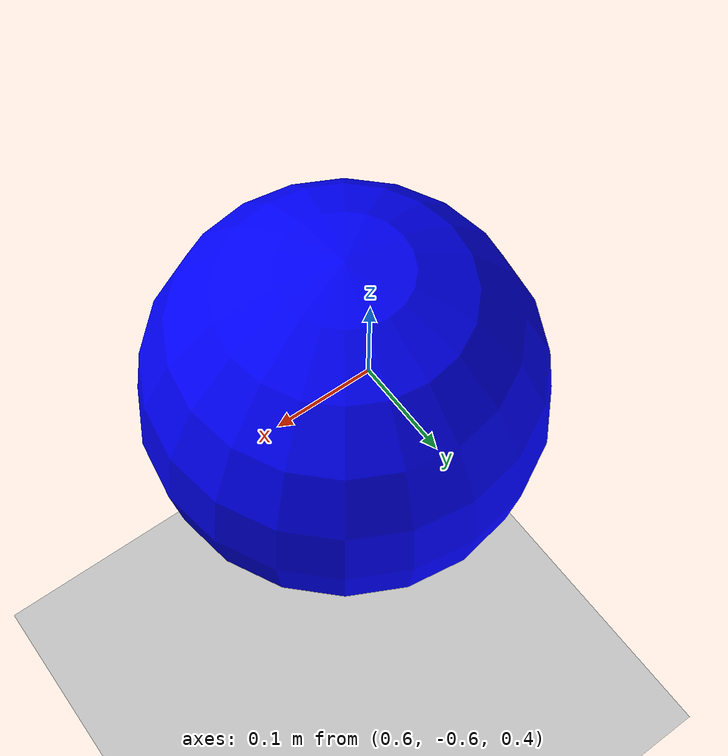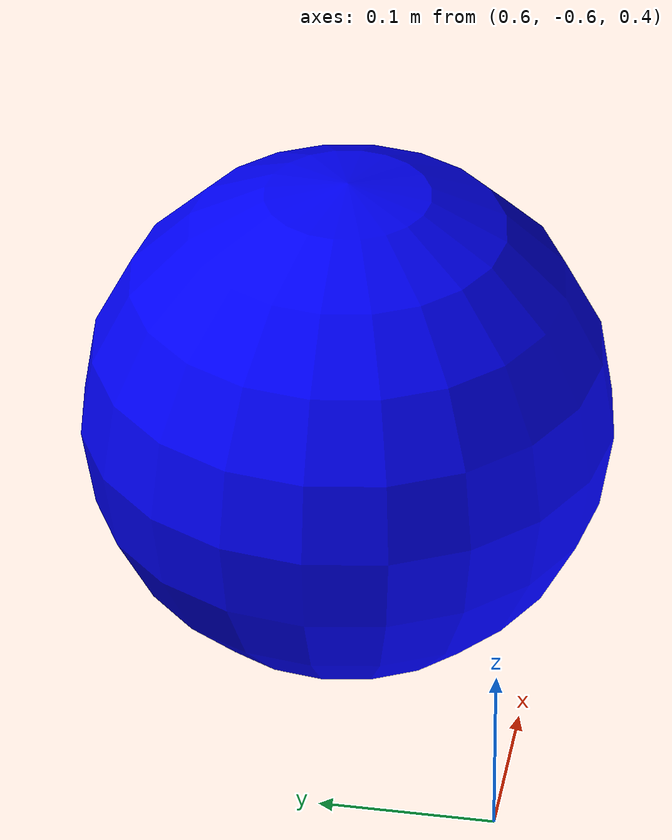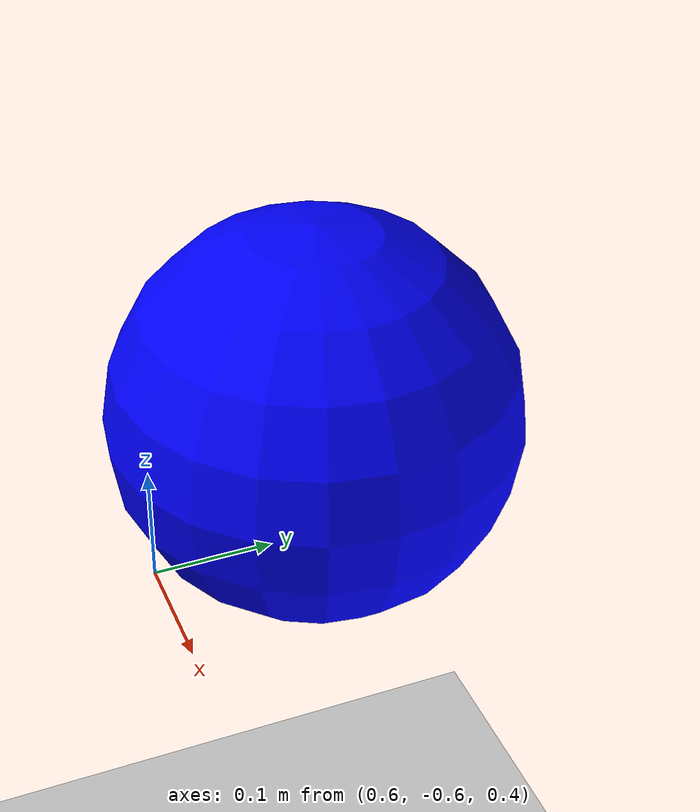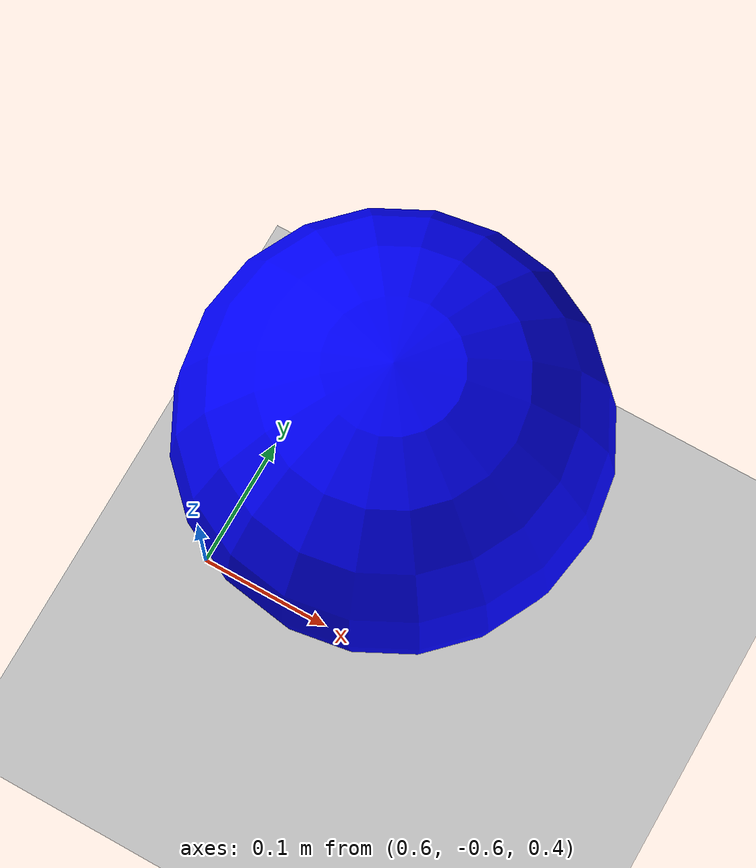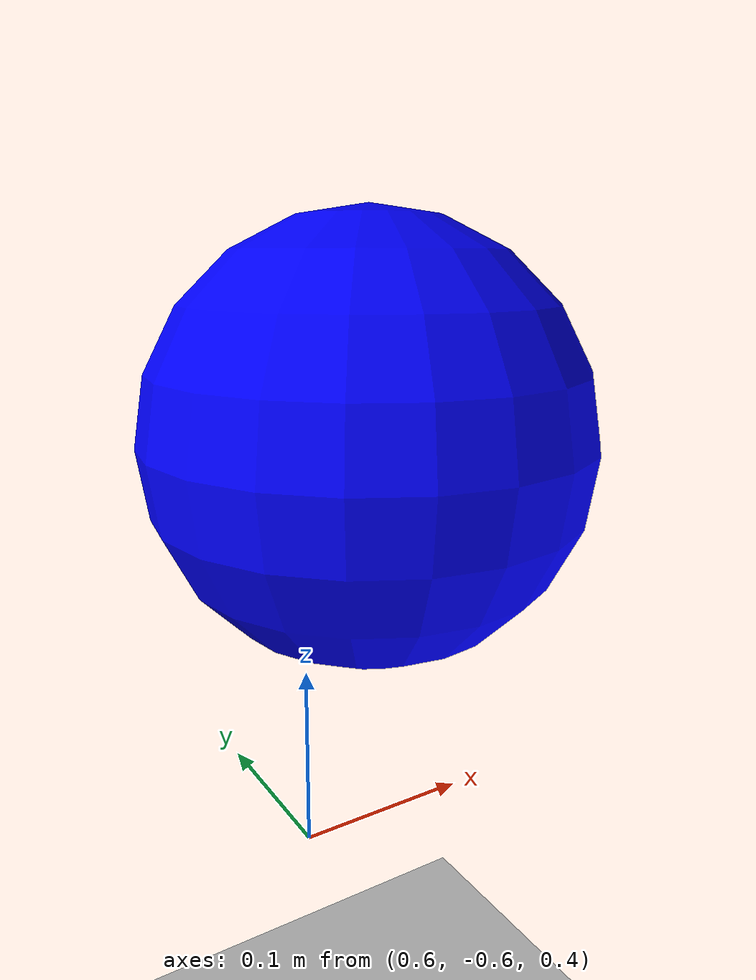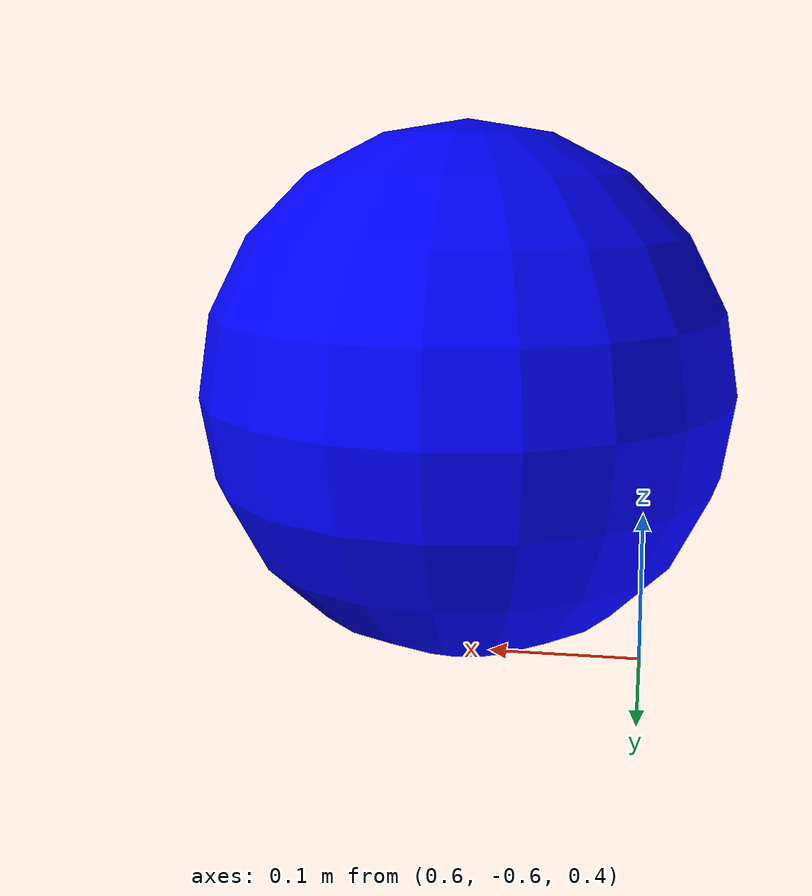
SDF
<?xml version="1.0" ?>
<sdf version="1.4">
  <!-- We use a custom world for the rrbot so that the camera angle is launched correctly -->

  <world name="default">
    <include>
      <uri>https://fuel.gazebosim.org/1.0/OpenRobotics/models/Ground Plane</uri>
    </include>

    <include>
      <uri>
        model://spherical_object
      </uri>
      <name>spherical_object</name>
      <pose>0.7 -0.5 0.6 0 0 0</pose>
    </include>

    <gravity>0 0 0</gravity>

    <include>
      <uri>https://fuel.gazebosim.org/1.0/OpenRobotics/models/Sun</uri>
    </include>

    <!-- Focus camera on tall pendulum -->
    <gui fullscreen='0'>
      <camera name='user_camera'>
        <pose>4.927360 -4.376610 3.740080 0.000000 0.275643 2.356190</pose>
        <view_controller>orbit</view_controller>
      </camera>
    </gui>

  </world>
</sdf>

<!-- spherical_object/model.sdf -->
<sdf version='1.9'>
  <model name='spherical_object'>
    <static>true</static>
    <pose>0 0 0.001 0 0 0</pose>
    <link name='base'>
      <visual name="visual">
        <geometry>
          <sphere>
            <!-- Raggio della sfera in metri -->
            <radius>0.15</radius>
          </sphere>
        </geometry>
        <material>
          <!-- Colore blu -->
          <ambient>0 0 1 1</ambient>
          <diffuse>0 0 1 1</diffuse>
        </material>
      </visual>
    </link>
  </model>
</sdf>
